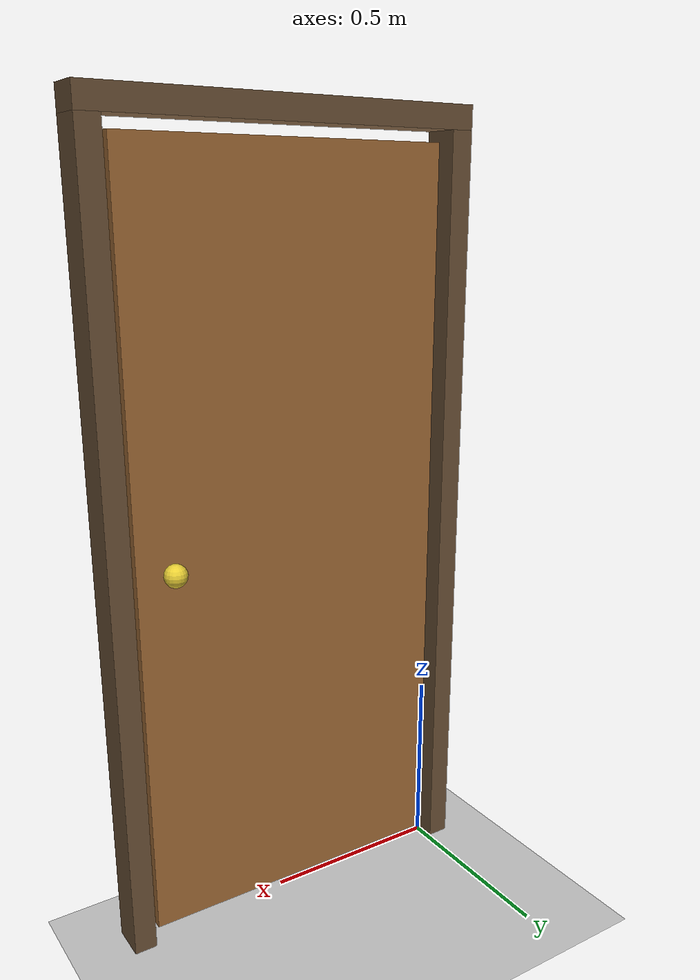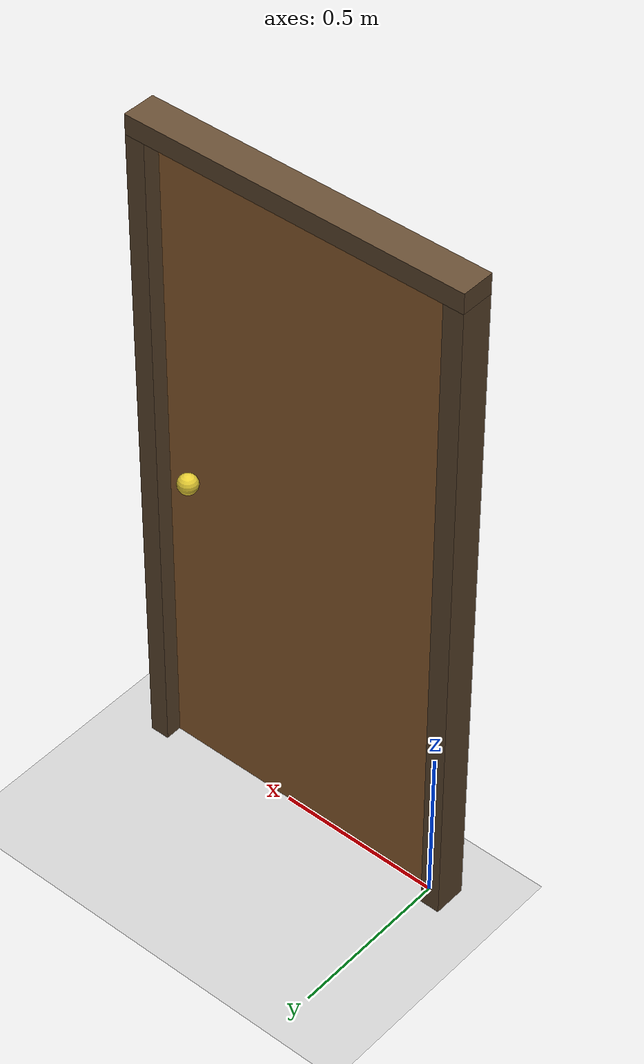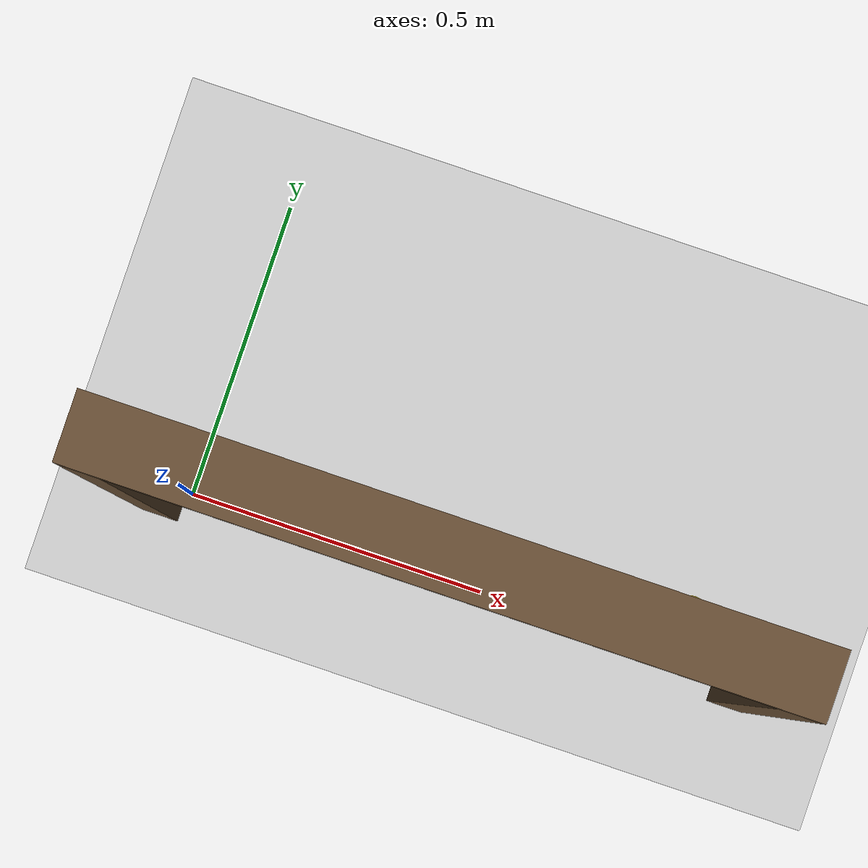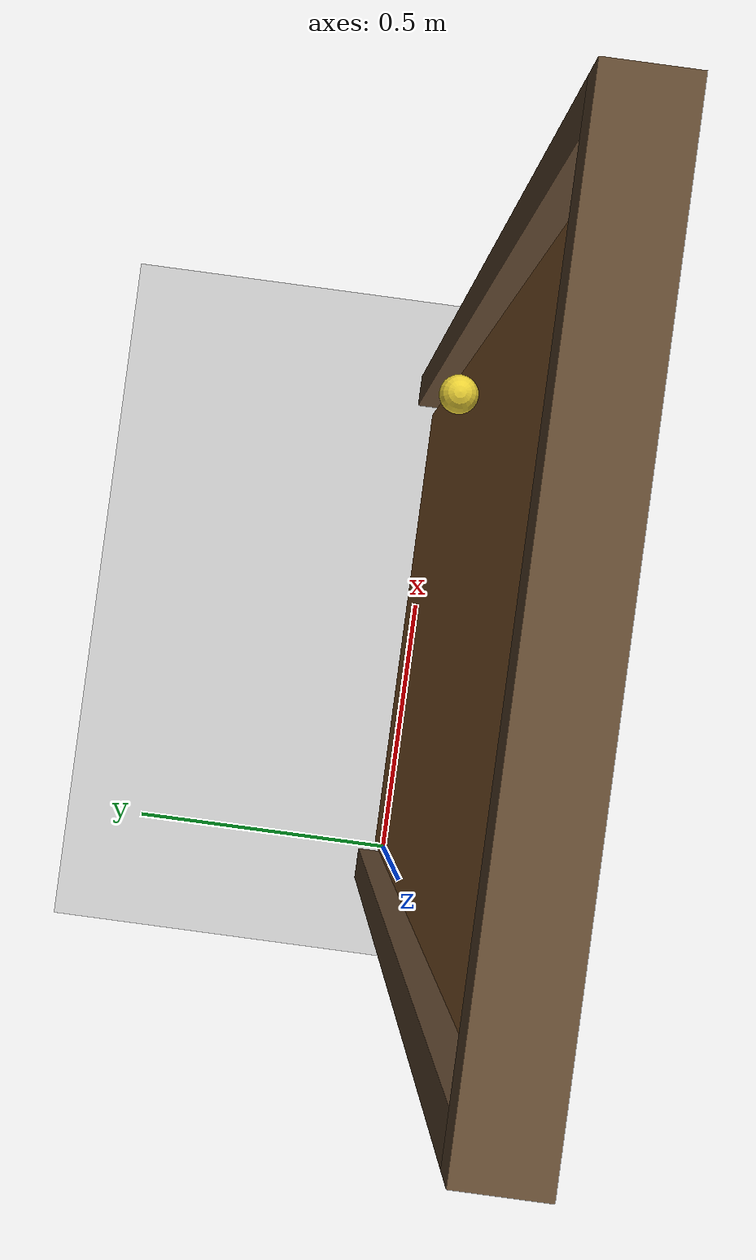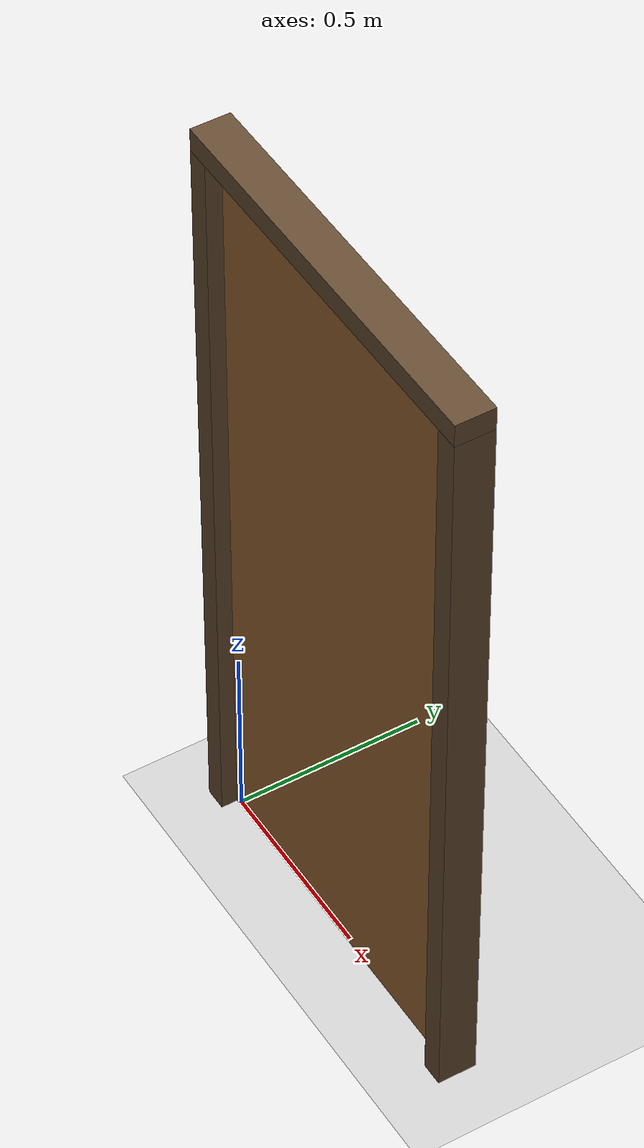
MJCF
<mujoco model="closing_door">
  <compiler angle="radian"/>
  <option timestep="0.002"/>
  <worldbody>
    <light name="sun" pos="0 0 4" dir="0 0 -1"/>
    <geom name="floor" type="plane" size="4 4 0.1" rgba="0.8 0.8 0.8 1"/>
    <geom name="frame_hinge_post" type="box" pos="-0.04 0 1.03" size="0.03 0.05 1.03" contype="0" conaffinity="0" rgba="0.4 0.3 0.2 1"/>
    <geom name="frame_latch_post" type="box" pos="0.94 0 1.03" size="0.03 0.05 1.03" contype="0" conaffinity="0" rgba="0.4 0.3 0.2 1"/>
    <geom name="frame_header" type="box" pos="0.45 0 2.09" size="0.52 0.05 0.03" contype="0" conaffinity="0" rgba="0.4 0.3 0.2 1"/>
    <body name="door" pos="0 0 0.03">
      <joint name="hinge" type="hinge" axis="0 0 1" pos="0 0 0" limited="true" range="0 1.7" stiffness="20" springref="-0.3" damping="12" armature="0.1"/>
      <geom name="door_slab" type="box" pos="0.45 0 1.0" size="0.44 0.02 1.0" density="600" rgba="0.6 0.4 0.2 1"/>
      <geom name="door_knob" type="sphere" pos="0.8 0.05 1.0" size="0.03" density="600" rgba="0.9 0.8 0.2 1"/>
    </body>
  </worldbody>
  <keyframe>
    <key name="start" qpos="1.4" qvel="0"/>
  </keyframe>
</mujoco>
